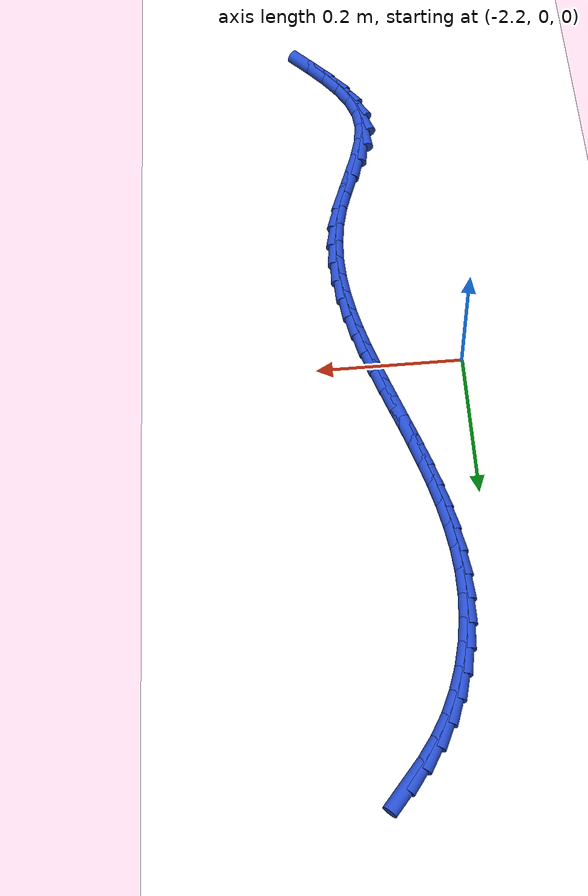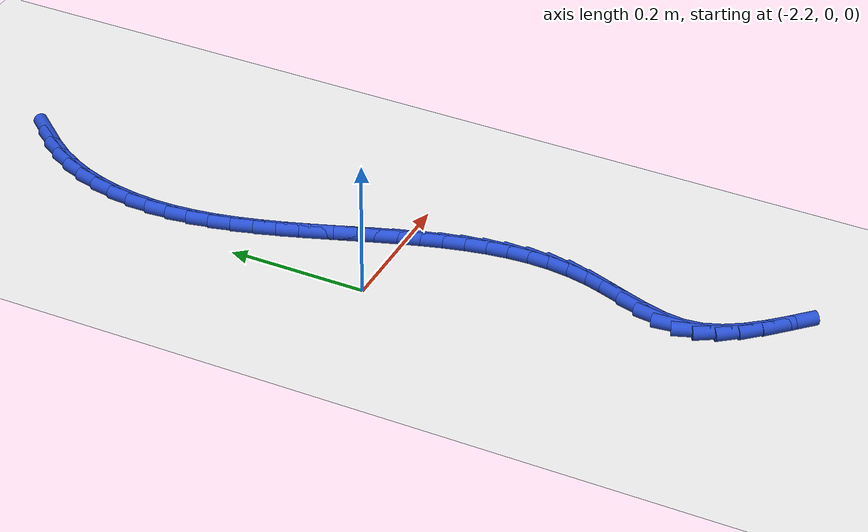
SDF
<sdf version="1.6">
 <world name="default">
  <model name="ground_plane">
   <static>1</static>
   <link name="link">
    <collision name="collision">
     <geometry><plane><normal>0 0 1</normal><size>100 100</size></plane></geometry>
     <surface><friction><ode><mu>100</mu><mu2>50</mu2></ode></friction></surface>
    </collision>
    <visual name="visual">
     <cast_shadows>0</cast_shadows>
     <geometry><plane><normal>0 0 1</normal><size>100 100</size></plane></geometry>
     <material>
      <script><uri>file://media/materials/scripts/gazebo.material</uri><name>Gazebo/WhiteGlow</name></script>
     </material>
    </visual>
   </link>
  </model>
  <model name="line">
   <link name="link_94">
    <pose>-2.0735560150328456 0.5696437982675207 0.01 0 1.57 0.8625882593590323</pose>
    <collision name="collision">
     <geometry><cylinder><radius>0.01</radius><length>0.08</length></cylinder></geometry>
    </collision>
    <visual name="visual">
     <material>
      <script><name>Gazebo/Blue</name><uri>file://media/materials/scripts/gazebo.material</uri></script>
     </material>
     <geometry><cylinder><radius>0.01</radius><length>0.08</length></cylinder></geometry>
    </visual>
   </link>
   <link name="link_95">
    <pose>-2.0935701100618527 0.5462742486128869 0.01 0 1.57 0.9380028660981233</pose>
    <collision name="collision">
     <geometry><cylinder><radius>0.01</radius><length>0.08</length></cylinder></geometry>
    </collision>
    <visual name="visual">
     <material>
      <script><name>Gazebo/Blue</name><uri>file://media/materials/scripts/gazebo.material</uri></script>
     </material>
     <geometry><cylinder><radius>0.01</radius><length>0.08</length></cylinder></geometry>
    </visual>
   </link>
   <link name="link_96">
    <pose>-2.111666064484053 0.5216002561644936 0.01 0 1.57 1.0372943485846446</pose>
    <collision name="collision">
     <geometry><cylinder><radius>0.01</radius><length>0.08</length></cylinder></geometry>
    </collision>
    <visual name="visual">
     <material>
      <script><name>Gazebo/Blue</name><uri>file://media/materials/scripts/gazebo.material</uri></script>
     </material>
     <geometry><cylinder><radius>0.01</radius><length>0.08</length></cylinder></geometry>
    </visual>
   </link>
   <link name="link_97">
    <pose>-2.127281690092182 0.49516136612256145 0.01 0 1.57 1.142192403774082</pose>
    <collision name="collision">
     <geometry><cylinder><radius>0.01</radius><length>0.08</length></cylinder></geometry>
    </collision>
    <visual name="visual">
     <material>
      <script><name>Gazebo/Blue</name><uri>file://media/materials/scripts/gazebo.material</uri></script>
     </material>
     <geometry><cylinder><radius>0.01</radius><length>0.08</length></cylinder></geometry>
    </visual>
   </link>
   <link name="link_98">
    <pose>-2.14017321781707 0.46694815965575537 0.01 0 1.57 1.2395602424939434</pose>
    <collision name="collision">
     <geometry><cylinder><radius>0.01</radius><length>0.08</length></cylinder></geometry>
    </collision>
    <visual name="visual">
     <material>
      <script><name>Gazebo/Blue</name><uri>file://media/materials/scripts/gazebo.material</uri></script>
     </material>
     <geometry><cylinder><radius>0.01</radius><length>0.08</length></cylinder></geometry>
    </visual>
   </link>
   <link name="link_99">
    <pose>-2.150360797673426 0.43732505538578603 0.01 0 1.57 1.3305070578912288</pose>
    <collision name="collision">
     <geometry><cylinder><radius>0.01</radius><length>0.08</length></cylinder></geometry>
    </collision>
    <visual name="visual">
     <material>
      <script><name>Gazebo/Blue</name><uri>file://media/materials/scripts/gazebo.material</uri></script>
     </material>
     <geometry><cylinder><radius>0.01</radius><length>0.08</length></cylinder></geometry>
    </visual>
   </link>
   <link name="link_100">
    <pose>-2.157872549576648 0.4066677611800357 0.01 0 1.57 1.416705133125029</pose>
    <collision name="collision">
     <geometry><cylinder><radius>0.01</radius><length>0.08</length></cylinder></geometry>
    </collision>
    <visual name="visual">
     <material>
      <script><name>Gazebo/Blue</name><uri>file://media/materials/scripts/gazebo.material</uri></script>
     </material>
     <geometry><cylinder><radius>0.01</radius><length>0.08</length></cylinder></geometry>
    </visual>
   </link>
   <link name="link_101">
    <pose>-2.1627365934421348 0.3753519849058856 0.01 0 1.57 1.4998850844301592</pose>
    <collision name="collision">
     <geometry><cylinder><radius>0.01</radius><length>0.08</length></cylinder></geometry>
    </collision>
    <visual name="visual">
     <material>
      <script><name>Gazebo/Blue</name><uri>file://media/materials/scripts/gazebo.material</uri></script>
     </material>
     <geometry><cylinder><radius>0.01</radius><length>0.08</length></cylinder></geometry>
    </visual>
   </link>
   <link name="link_102">
    <pose>-2.164981049185284 0.343753434430718 0.01 0 1.57 -1.5599797895121692</pose>
    <collision name="collision">
     <geometry><cylinder><radius>0.01</radius><length>0.08</length></cylinder></geometry>
    </collision>
    <visual name="visual">
     <material>
      <script><name>Gazebo/Blue</name><uri>file://media/materials/scripts/gazebo.material</uri></script>
     </material>
     <geometry><cylinder><radius>0.01</radius><length>0.08</length></cylinder></geometry>
    </visual>
   </link>
   <link name="link_103">
    <pose>-2.164640159734823 0.3122390831142939 0.01 0 1.57 -1.4828608901027143</pose>
    <collision name="collision">
     <geometry><cylinder><radius>0.01</radius><length>0.08</length></cylinder></geometry>
    </collision>
    <visual name="visual">
     <material>
      <script><name>Gazebo/Blue</name><uri>file://media/materials/scripts/gazebo.material</uri></script>
     </material>
     <geometry><cylinder><radius>0.01</radius><length>0.08</length></cylinder></geometry>
    </visual>
   </link>
   <link name="link_104">
    <pose>-2.161884408722794 0.280981556305498 0.01 0 1.57 -1.4151798911752684</pose>
    <collision name="collision">
     <geometry><cylinder><radius>0.01</radius><length>0.08</length></cylinder></geometry>
    </collision>
    <visual name="visual">
     <material>
      <script><name>Gazebo/Blue</name><uri>file://media/materials/scripts/gazebo.material</uri></script>
     </material>
     <geometry><cylinder><radius>0.01</radius><length>0.08</length></cylinder></geometry>
    </visual>
   </link>
   <link name="link_105">
    <pose>-2.157018018992335 0.24996269973287094 0.01 0 1.57 -1.3576611255437092</pose>
    <collision name="collision">
     <geometry><cylinder><radius>0.01</radius><length>0.08</length></cylinder></geometry>
    </collision>
    <visual name="visual">
     <material>
      <script><name>Gazebo/Blue</name><uri>file://media/materials/scripts/gazebo.material</uri></script>
     </material>
     <geometry><cylinder><radius>0.01</radius><length>0.08</length></cylinder></geometry>
    </visual>
   </link>
   <link name="link_106">
    <pose>-2.150350836047608 0.21915633837227322 0.01 0 1.57 -1.3104138935293126</pose>
    <collision name="collision">
     <geometry><cylinder><radius>0.01</radius><length>0.08</length></cylinder></geometry>
    </collision>
    <visual name="visual">
     <material>
      <script><name>Gazebo/Blue</name><uri>file://media/materials/scripts/gazebo.material</uri></script>
     </material>
     <geometry><cylinder><radius>0.01</radius><length>0.08</length></cylinder></geometry>
    </visual>
   </link>
   <link name="link_107">
    <pose>-2.1421927053927785 0.18853629719956466 0.01 0 1.57 -1.2732886747744938</pose>
    <collision name="collision">
     <geometry><cylinder><radius>0.01</radius><length>0.08</length></cylinder></geometry>
    </collision>
    <visual name="visual">
     <material>
      <script><name>Gazebo/Blue</name><uri>file://media/materials/scripts/gazebo.material</uri></script>
     </material>
     <geometry><cylinder><radius>0.01</radius><length>0.08</length></cylinder></geometry>
    </visual>
   </link>
   <link name="link_108">
    <pose>-2.1328534725320094 0.15807640119060495 0.01 0 1.57 -1.2460262336887626</pose>
    <collision name="collision">
     <geometry><cylinder><radius>0.01</radius><length>0.08</length></cylinder></geometry>
    </collision>
    <visual name="visual">
     <material>
      <script><name>Gazebo/Blue</name><uri>file://media/materials/scripts/gazebo.material</uri></script>
     </material>
     <geometry><cylinder><radius>0.01</radius><length>0.08</length></cylinder></geometry>
    </visual>
   </link>
   <link name="link_109">
    <pose>-2.1226429829694675 0.127750475321255 0.01 0 1.57 -1.2283679727694967</pose>
    <collision name="collision">
     <geometry><cylinder><radius>0.01</radius><length>0.08</length></cylinder></geometry>
    </collision>
    <visual name="visual">
     <material>
      <script><name>Gazebo/Blue</name><uri>file://media/materials/scripts/gazebo.material</uri></script>
     </material>
     <geometry><cylinder><radius>0.01</radius><length>0.08</length></cylinder></geometry>
    </visual>
   </link>
   <link name="link_110">
    <pose>-2.1118710822093147 0.09753234456737397 0.01 0 1.57 -1.2201294338347044</pose>
    <collision name="collision">
     <geometry><cylinder><radius>0.01</radius><length>0.08</length></cylinder></geometry>
    </collision>
    <visual name="visual">
     <material>
      <script><name>Gazebo/Blue</name><uri>file://media/materials/scripts/gazebo.material</uri></script>
     </material>
     <geometry><cylinder><radius>0.01</radius><length>0.08</length></cylinder></geometry>
    </visual>
   </link>
   <link name="link_111">
    <pose>-2.100847615755717 0.06739583390482286 0.01 0 1.57 -1.2212440324776026</pose>
    <collision name="collision">
     <geometry><cylinder><radius>0.01</radius><length>0.08</length></cylinder></geometry>
    </collision>
    <visual name="visual">
     <material>
      <script><name>Gazebo/Blue</name><uri>file://media/materials/scripts/gazebo.material</uri></script>
     </material>
     <geometry><cylinder><radius>0.01</radius><length>0.08</length></cylinder></geometry>
    </visual>
   </link>
   <link name="link_112">
    <pose>-2.089882429112837 0.03731476830946083 0.01 0 1.57 -1.231783505406441</pose>
    <collision name="collision">
     <geometry><cylinder><radius>0.01</radius><length>0.08</length></cylinder></geometry>
    </collision>
    <visual name="visual">
     <material>
      <script><name>Gazebo/Blue</name><uri>file://media/materials/scripts/gazebo.material</uri></script>
     </material>
     <geometry><cylinder><radius>0.01</radius><length>0.08</length></cylinder></geometry>
    </visual>
   </link>
   <link name="link_113">
    <pose>-2.0792853677848395 0.0072629727571488015 0.01 0 1.57 -1.2519581555801178</pose>
    <collision name="collision">
     <geometry><cylinder><radius>0.01</radius><length>0.08</length></cylinder></geometry>
    </collision>
    <visual name="visual">
     <material>
      <script><name>Gazebo/Blue</name><uri>file://media/materials/scripts/gazebo.material</uri></script>
     </material>
     <geometry><cylinder><radius>0.01</radius><length>0.08</length></cylinder></geometry>
    </visual>
   </link>
   <link name="link_114">
    <pose>-2.06936627727589 -0.022785727776253928 0.01 0 1.57 -1.2820954572869607</pose>
    <collision name="collision">
     <geometry><cylinder><radius>0.01</radius><length>0.08</length></cylinder></geometry>
    </collision>
    <visual name="visual">
     <material>
      <script><name>Gazebo/Blue</name><uri>file://media/materials/scripts/gazebo.material</uri></script>
     </material>
     <geometry><cylinder><radius>0.01</radius><length>0.08</length></cylinder></geometry>
    </visual>
   </link>
   <link name="link_115">
    <pose>-2.0604350030901513 -0.052857508314886587 0.01 0 1.57 -1.322590847589519</pose>
    <collision name="collision">
     <geometry><cylinder><radius>0.01</radius><length>0.08</length></cylinder></geometry>
    </collision>
    <visual name="visual">
     <material>
      <script><name>Gazebo/Blue</name><uri>file://media/materials/scripts/gazebo.material</uri></script>
     </material>
     <geometry><cylinder><radius>0.01</radius><length>0.08</length></cylinder></geometry>
    </visual>
   </link>
   <link name="link_116">
    <pose>-2.052801390731787 -0.08297854388288936 0.01 0 1.57 -1.373820747465824</pose>
    <collision name="collision">
     <geometry><cylinder><radius>0.01</radius><length>0.08</length></cylinder></geometry>
    </collision>
    <visual name="visual">
     <material>
      <script><name>Gazebo/Blue</name><uri>file://media/materials/scripts/gazebo.material</uri></script>
     </material>
     <geometry><cylinder><radius>0.01</radius><length>0.08</length></cylinder></geometry>
    </visual>
   </link>
   <link name="link_117">
    <pose>-2.0467752857049635 -0.11317500950440307 0.01 0 1.57 -1.4360075666520151</pose>
    <collision name="collision">
     <geometry><cylinder><radius>0.01</radius><length>0.08</length></cylinder></geometry>
    </collision>
    <visual name="visual">
     <material>
      <script><name>Gazebo/Blue</name><uri>file://media/materials/scripts/gazebo.material</uri></script>
     </material>
     <geometry><cylinder><radius>0.01</radius><length>0.08</length></cylinder></geometry>
    </visual>
   </link>
   <link name="link_118">
    <pose>-2.0426665335138434 -0.14347308020356606 0.01 0 1.57 -1.5090343457521345</pose>
    <collision name="collision">
     <geometry><cylinder><radius>0.01</radius><length>0.08</length></cylinder></geometry>
    </collision>
    <visual name="visual">
     <material>
      <script><name>Gazebo/Blue</name><uri>file://media/materials/scripts/gazebo.material</uri></script>
     </material>
     <geometry><cylinder><radius>0.01</radius><length>0.08</length></cylinder></geometry>
    </visual>
   </link>
   <link name="link_119">
    <pose>-2.040784979662591 -0.173898931004519 0.01 0 1.57 1.5493642213041987</pose>
    <collision name="collision">
     <geometry><cylinder><radius>0.01</radius><length>0.08</length></cylinder></geometry>
    </collision>
    <visual name="visual">
     <material>
      <script><name>Gazebo/Blue</name><uri>file://media/materials/scripts/gazebo.material</uri></script>
     </material>
     <geometry><cylinder><radius>0.01</radius><length>0.08</length></cylinder></geometry>
    </visual>
   </link>
   <link name="link_120">
    <pose>-2.0414404696553716 -0.20447873693140192 0.01 0 1.57 1.4574228638469857</pose>
    <collision name="collision">
     <geometry><cylinder><radius>0.01</radius><length>0.08</length></cylinder></geometry>
    </collision>
    <visual name="visual">
     <material>
      <script><name>Gazebo/Blue</name><uri>file://media/materials/scripts/gazebo.material</uri></script>
     </material>
     <geometry><cylinder><radius>0.01</radius><length>0.08</length></cylinder></geometry>
    </visual>
   </link>
   <link name="link_121">
    <pose>-2.0449428489963486 -0.23523867300835455 0.01 0 1.57 1.3589779087509422</pose>
    <collision name="collision">
     <geometry><cylinder><radius>0.01</radius><length>0.08</length></cylinder></geometry>
    </collision>
    <visual name="visual">
     <material>
      <script><name>Gazebo/Blue</name><uri>file://media/materials/scripts/gazebo.material</uri></script>
     </material>
     <geometry><cylinder><radius>0.01</radius><length>0.08</length></cylinder></geometry>
    </visual>
   </link>
   <link name="link_122">
    <pose>-2.051601959818812 -0.2662049137020104 0.01 0 1.57 1.268258913213098</pose>
    <collision name="collision">
     <geometry><cylinder><radius>0.01</radius><length>0.08</length></cylinder></geometry>
    </collision>
    <visual name="visual">
     <material>
      <script><name>Gazebo/Blue</name><uri>file://media/materials/scripts/gazebo.material</uri></script>
     </material>
     <geometry><cylinder><radius>0.01</radius><length>0.08</length></cylinder></geometry>
    </visual>
   </link>
   <link name="link_123">
    <pose>-2.0613185440562702 -0.2973359725711574 0.01 0 1.57 1.2259121423799035</pose>
    <collision name="collision">
     <geometry><cylinder><radius>0.01</radius><length>0.08</length></cylinder></geometry>
    </collision>
    <visual name="visual">
     <material>
      <script><name>Gazebo/Blue</name><uri>file://media/materials/scripts/gazebo.material</uri></script>
     </material>
     <geometry><cylinder><radius>0.01</radius><length>0.08</length></cylinder></geometry>
    </visual>
   </link>
   <link name="link_124">
    <pose>-2.0724550279992133 -0.3283359418054185 0.01 0 1.57 1.2376970768024451</pose>
    <collision name="collision">
     <geometry><cylinder><radius>0.01</radius><length>0.08</length></cylinder></geometry>
    </collision>
    <visual name="visual">
     <material>
      <script><name>Gazebo/Blue</name><uri>file://media/materials/scripts/gazebo.material</uri></script>
     </material>
     <geometry><cylinder><radius>0.01</radius><length>0.08</length></cylinder></geometry>
    </visual>
   </link>
   <link name="link_125">
    <pose>-2.083012327140181 -0.3588491234774775 0.01 0 1.57 1.308091816525168</pose>
    <collision name="collision">
     <geometry><cylinder><radius>0.01</radius><length>0.08</length></cylinder></geometry>
    </collision>
    <visual name="visual">
     <material>
      <script><name>Gazebo/Blue</name><uri>file://media/materials/scripts/gazebo.material</uri></script>
     </material>
     <geometry><cylinder><radius>0.01</radius><length>0.08</length></cylinder></geometry>
    </visual>
   </link>
   <link name="link_126">
    <pose>-2.0909913569717085 -0.3885198196600187 0.01 0 1.57 1.4518876620124963</pose>
    <collision name="collision">
     <geometry><cylinder><radius>0.01</radius><length>0.08</length></cylinder></geometry>
    </collision>
    <visual name="visual">
     <material>
      <script><name>Gazebo/Blue</name><uri>file://media/materials/scripts/gazebo.material</uri></script>
     </material>
     <geometry><cylinder><radius>0.01</radius><length>0.08</length></cylinder></geometry>
    </visual>
   </link>
   <link name="link_127">
    <pose>-2.0943930329863356 -0.41699233242572437 0.01 0 1.57 -1.4589219963803015</pose>
    <collision name="collision">
     <geometry><cylinder><radius>0.01</radius><length>0.08</length></cylinder></geometry>
    </collision>
    <visual name="visual">
     <material>
      <script><name>Gazebo/Blue</name><uri>file://media/materials/scripts/gazebo.material</uri></script>
     </material>
     <geometry><cylinder><radius>0.01</radius><length>0.08</length></cylinder></geometry>
    </visual>
   </link>
   <link name="link_128">
    <pose>-2.091365012560072 -0.4439455852056214 0.01 0 1.57 -1.214496358910142</pose>
    <collision name="collision">
     <geometry><cylinder><radius>0.01</radius><length>0.08</length></cylinder></geometry>
    </collision>
    <visual name="visual">
     <material>
      <script><name>Gazebo/Blue</name><uri>file://media/materials/scripts/gazebo.material</uri></script>
     </material>
     <geometry><cylinder><radius>0.01</radius><length>0.08</length></cylinder></geometry>
    </visual>
   </link>
   <link name="link_129">
    <pose>-2.0818598829911314 -0.46948434526032723 0.01 0 1.57 -1.0271684798510021</pose>
    <collision name="collision">
     <geometry><cylinder><radius>0.01</radius><length>0.08</length></cylinder></geometry>
    </collision>
    <visual name="visual">
     <material>
      <script><name>Gazebo/Blue</name><uri>file://media/materials/scripts/gazebo.material</uri></script>
     </material>
     <geometry><cylinder><radius>0.01</radius><length>0.08</length></cylinder></geometry>
    </visual>
   </link>
   <link name="link_130">
    <pose>-2.0670435316732316 -0.49399963825459836 0.01 0 1.57 -0.9004453158680491</pose>
    <collision name="collision">
     <geometry><cylinder><radius>0.01</radius><length>0.08</length></cylinder></geometry>
    </collision>
    <visual name="visual">
     <material>
      <script><name>Gazebo/Blue</name><uri>file://media/materials/scripts/gazebo.material</uri></script>
     </material>
     <geometry><cylinder><radius>0.01</radius><length>0.08</length></cylinder></geometry>
    </visual>
   </link>
   <link name="link_131">
    <pose>-2.0481043791165217 -0.5178878061751584 0.01 0 1.57 -0.8245570411911849</pose>
    <collision name="collision">
     <geometry><cylinder><radius>0.01</radius><length>0.08</length></cylinder></geometry>
    </collision>
    <visual name="visual">
     <material>
      <script><name>Gazebo/Blue</name><uri>file://media/materials/scripts/gazebo.material</uri></script>
     </material>
     <geometry><cylinder><radius>0.01</radius><length>0.08</length></cylinder></geometry>
    </visual>
   </link>
   <link name="link_132">
    <pose>-2.0262308458311504 -0.5415451910087292 0.01 0 1.57 -0.7896864966731393</pose>
    <collision name="collision">
     <geometry><cylinder><radius>0.01</radius><length>0.08</length></cylinder></geometry>
    </collision>
    <visual name="visual">
     <material>
      <script><name>Gazebo/Blue</name><uri>file://media/materials/scripts/gazebo.material</uri></script>
     </material>
     <geometry><cylinder><radius>0.01</radius><length>0.08</length></cylinder></geometry>
    </visual>
   </link>
  </model>
 </world>
</sdf>
